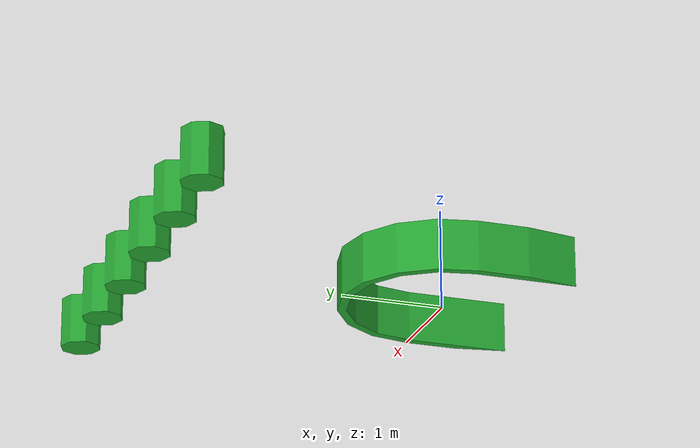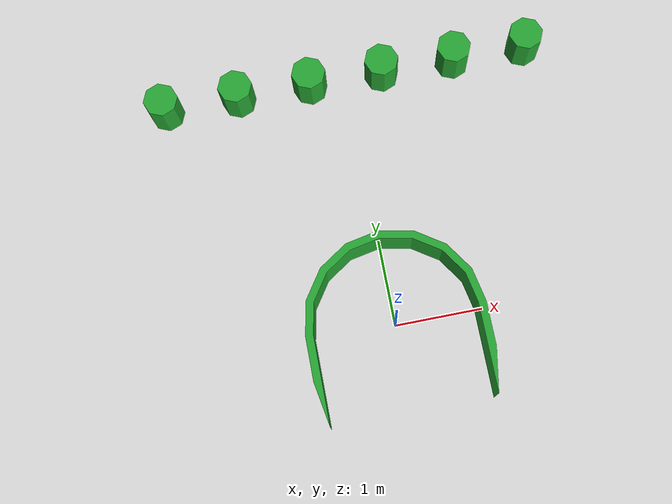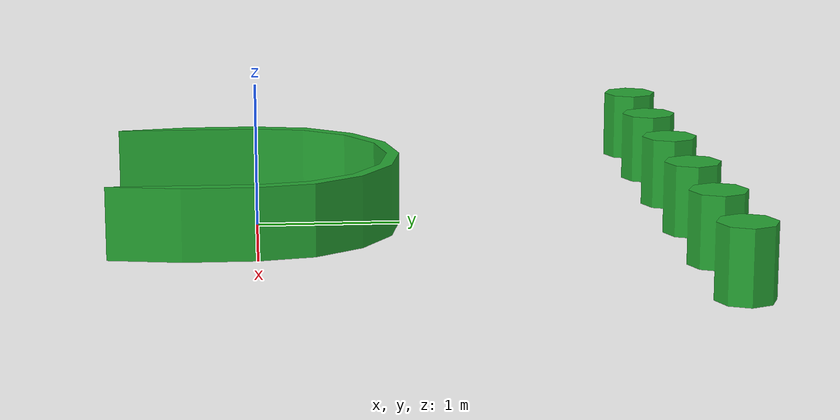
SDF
<?xml version='1.0'?>
<sdf version='1.5'>
  <!-- Bambuzal -->
  <model name='plantation'>
    <static>1</static>
    <link name='rows'>
      <collision name='one_one'>
        <pose> 0 0 0 1.57 0 0</pose>
        <geometry>
          <mesh>
            <uri>model://turtlebot3_minimum_tests/meshes/minimum.obj</uri>
          </mesh>
        </geometry>
        <max_contacts>10</max_contacts>
        <surface>
          <bounce/>
          <friction>
            <ode/>
          </friction>
          <contact>
            <ode/>
          </contact>
        </surface>
      </collision>

      <visual name='one_one'>
        <pose>0 0 0.001 1.57079632679 0 0</pose>
        <geometry>
          <mesh>
            <uri>model://turtlebot3_minimum_tests/meshes/minimum.obj</uri>
          </mesh>
        </geometry>
        <material>
          <script>
            <uri>row.mtl</uri>
            <name>myGreen</name>
          </script>
        </material>
      </visual>
    </link>

  </model>
</sdf>
